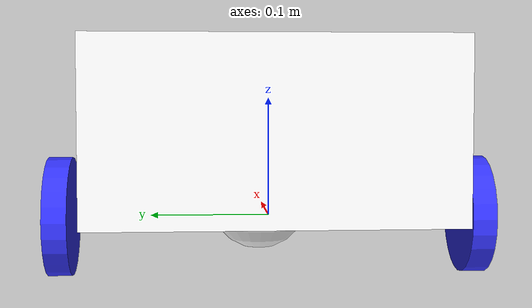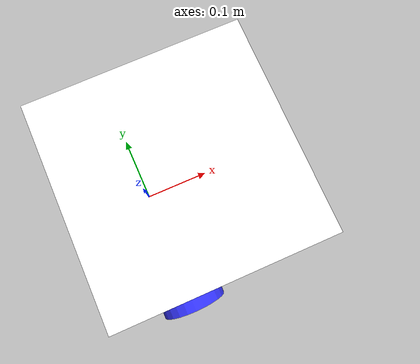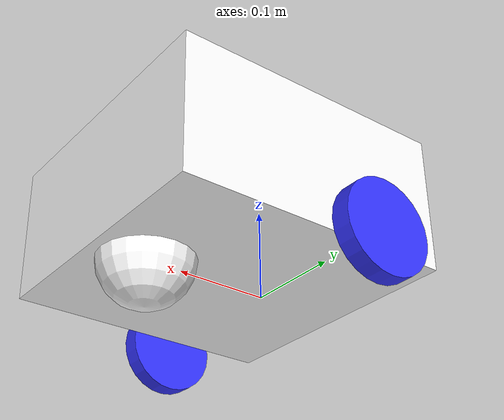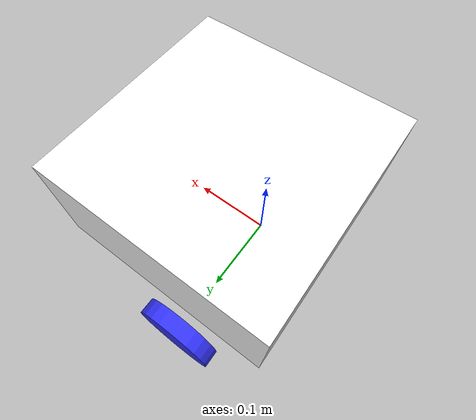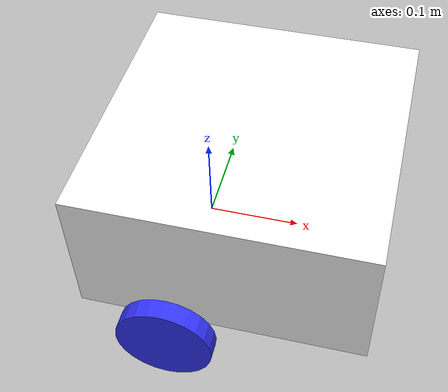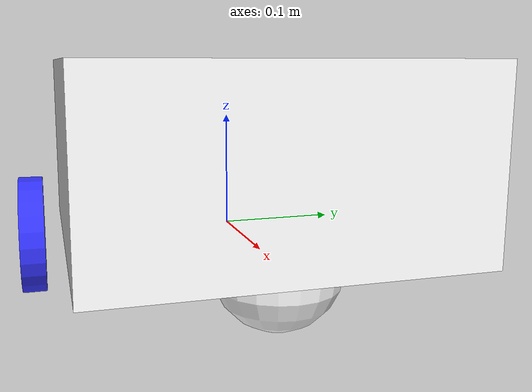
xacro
<?xml version="1.0"?>

<robot name="orion" xmlns:xacro="http://www.ros.org/wiki/xacro">

<xacro:include filename="$(find orion_simulation)/description/urdf/robot_properties.urdf.xacro"/>
<xacro:include filename="$(find orion_simulation)/description/urdf/diff_wheels.urdf.xacro"/>
<xacro:include filename="$(find orion_simulation)/description/urdf/inertial_macros.xacro" />
<xacro:include filename="$(find orion_simulation)/description/urdf/ros2_control.xacro" />

<!-- Robot Base -->
<link name="base_link"> </link>

<joint name="chassis_joint" type="fixed">
    <parent link="base_link"/>
    <child link="chassis"/>
    <origin xyz="-0.1 0 0"/>
</joint>

<!-- Base Chassis -->
<link name="chassis">
    <visual>
        <origin xyz="${base_height} 0 ${base_height/2}" rpy="0 0 0"/>
        <geometry>
            <box size="${base_length} ${base_width} ${base_height}"/>
        </geometry>
        <material name="white"/>
    </visual>

    <collision>
        <origin xyz="${base_height} 0 ${base_height/2}" rpy="0 0 0"/>
        <geometry>
            <box size="${base_length} ${base_width} ${base_height}"/>
        </geometry>
    </collision>

    <xacro:inertial_box mass="0.5" x="0.3" y="0.3" z="0.15">
      <origin xyz="${base_height} 0 ${base_height/2}" rpy="0 0 0"/>
    </xacro:inertial_box>
</link>

<!-- Diff Wheels -->
<xacro:wheel prefix="left" reflect="1" />
<xacro:wheel prefix="right" reflect="-1" />

<!-- Caster Wheels -->
<joint name="caster_wheel_joint" type="fixed">
    <parent link="chassis"/>
    <child link="caster_wheel"/>
    <origin xyz="0.24 0 0" rpy="0 0 0"/>
</joint>

 <link name="caster_wheel">
        <visual>
            <geometry>
                <sphere radius="${caster_wheel_radius}"/>
            </geometry>
            <material name="white"/>
        </visual>
        <collision>
            <geometry>
                <sphere radius="${caster_wheel_radius}"/>
            </geometry>
        </collision>
        <xacro:inertial_sphere mass="10" radius="${caster_wheel_radius}">
            <origin xyz="0 0 0" rpy="0 0 0"/>
        </xacro:inertial_sphere>
    </link>

    <gazebo reference="caster_wheel">
        <material>Gazebo/Blue</material>
        <mu1 value="0.01"/>
        <mu2 value="0.01"/>
    </gazebo>

</robot>

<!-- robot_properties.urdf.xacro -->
<!-- properties.urdf.xacro -->
<robot xmlns:xacro="http://www.ros.org/wiki/xacro">
  <xacro:property name="base_width" value="0.3" />
  <xacro:property name="base_length" value="0.3" />
  <xacro:property name="base_height" value="0.15" />
  <xacro:property name="diff_wheel_radius" value="0.05" />
  <xacro:property name="diff_wheel_width" value="0.02" />
  <xacro:property name="diff_wheel_y" value="0.175" />
  <xacro:property name="caster_wheel_radius" value="0.05" />

  <material name="white">
    <color rgba="1 1 1 1"/>
  </material>

  <material name="orange">
    <color rgba="1 0.3 0.1 1"/>
  </material>

  <material name="blue">
    <color rgba="0.2 0.2 1 1"/>
  </material>

  <material name="black">
    <color rgba="0 0 0 1"/>
  </material>

</robot>

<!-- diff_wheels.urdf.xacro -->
<robot xmlns:xacro="http://www.ros.org/wiki/xacro" >

<xacro:macro name="wheel" params="prefix reflect">

    <joint name="${prefix}_wheel_joint" type="continuous">
        <parent link="base_link"/>
        <child link="${prefix}_wheel"/>
        <origin xyz="0 ${diff_wheel_y * reflect} 0" rpy="${-pi/2 * reflect} 0 0"/>
        <axis xyz="0 0 ${reflect}"/>
    </joint>

    <link name="${prefix}_wheel">
    <visual>
        <geometry>
            <cylinder length="${diff_wheel_width}" radius="${diff_wheel_radius}" />
        </geometry>
        <material name="blue"/>
    </visual>

    <xacro:inertial_cylinder mass="0.1" length="0.05" radius="0.05">
        <origin xyz="0 0 0" rpy="0 0 0"/>
    </xacro:inertial_cylinder>

    </link>

    <gazebo reference="chassis">
        <material>Gazebo/Blue</material>
    </gazebo>
</xacro:macro>

</robot>
